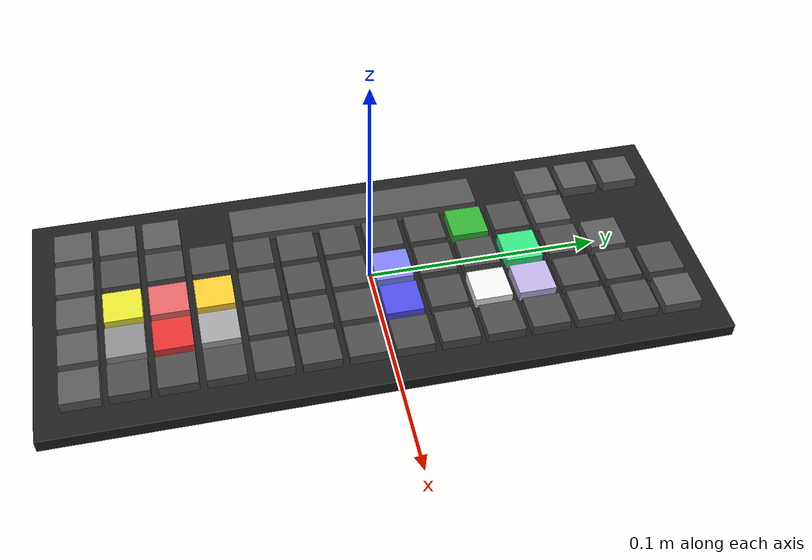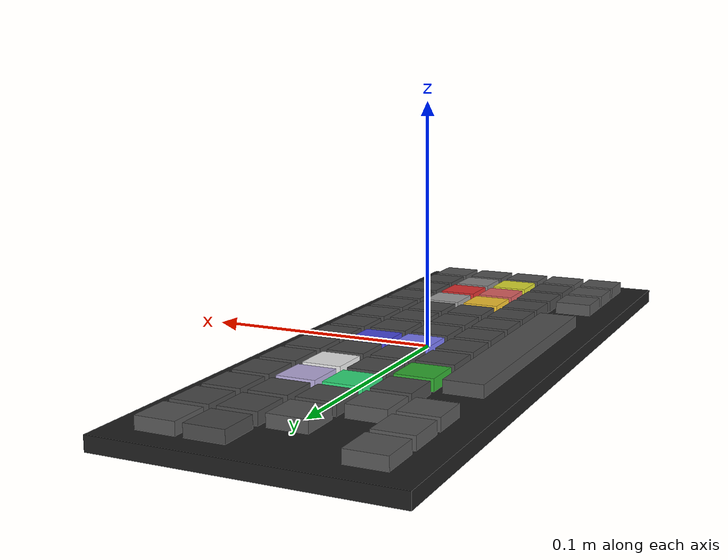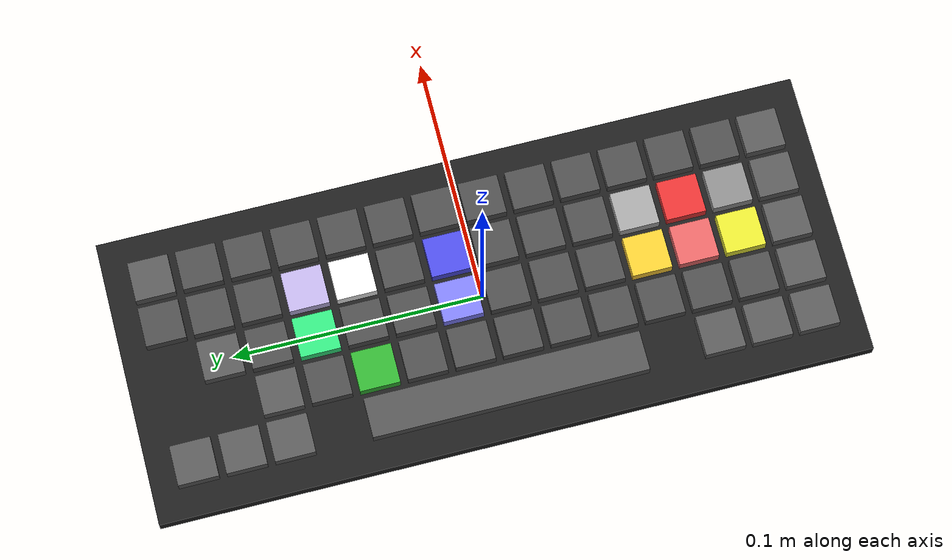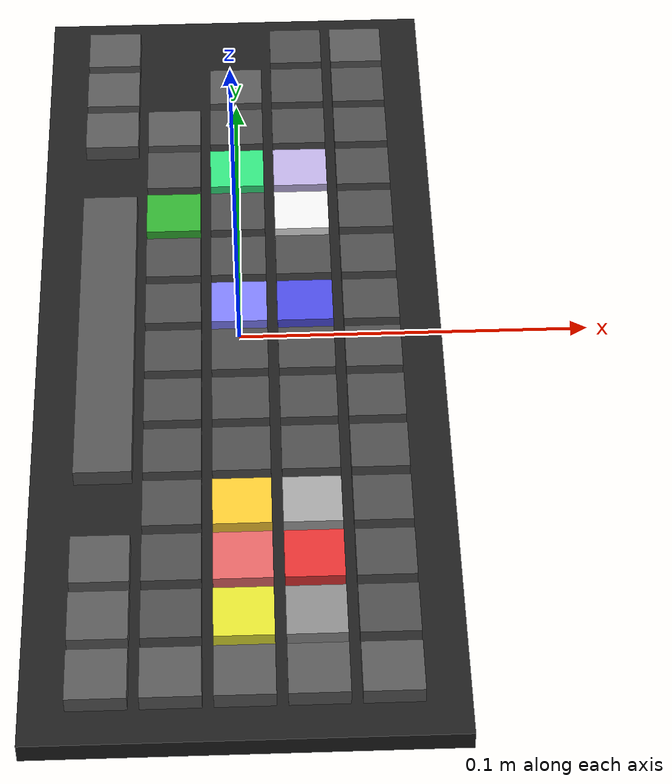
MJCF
<mujoco model="simple_keyboard">
  <worldbody>
    <body>
      <body name="object">

        <!-- ═══ Base plate ════════════════════════════════════════════ -->
        <geom name="base" type="box"
              size="0.058 0.142 0.003"
              pos="0 0 -0.003"
              rgba="0.12 0.12 0.12 1"
              group="0" condim="4"
              solimp="0.998 0.998 0.001" solref="0.001 1"
              friction="0.95 0.3 0.1"/>

        <!-- ═══ Row 0 — Number row (X = +0.038, 14 keys) ════════════ -->
        <geom name="key_esc" type="box" size="0.008 0.008 0.004"
              pos="0.038 -0.1235 0.001" rgba="0.35 0.35 0.35 1"
              group="0" condim="4" solimp="0.998 0.998 0.001" solref="0.001 1" friction="0.95 0.3 0.1"/>
        <geom name="key_1" type="box" size="0.008 0.008 0.004"
              pos="0.038 -0.1045 0.001" rgba="0.30 0.30 0.30 1"
              group="0" condim="4" solimp="0.998 0.998 0.001" solref="0.001 1" friction="0.95 0.3 0.1"/>
        <geom name="key_2" type="box" size="0.008 0.008 0.004"
              pos="0.038 -0.0855 0.001" rgba="0.30 0.30 0.30 1"
              group="0" condim="4" solimp="0.998 0.998 0.001" solref="0.001 1" friction="0.95 0.3 0.1"/>
        <geom name="key_3" type="box" size="0.008 0.008 0.004"
              pos="0.038 -0.0665 0.001" rgba="0.30 0.30 0.30 1"
              group="0" condim="4" solimp="0.998 0.998 0.001" solref="0.001 1" friction="0.95 0.3 0.1"/>
        <geom name="key_4" type="box" size="0.008 0.008 0.004"
              pos="0.038 -0.0475 0.001" rgba="0.30 0.30 0.30 1"
              group="0" condim="4" solimp="0.998 0.998 0.001" solref="0.001 1" friction="0.95 0.3 0.1"/>
        <geom name="key_5" type="box" size="0.008 0.008 0.004"
              pos="0.038 -0.0285 0.001" rgba="0.30 0.30 0.30 1"
              group="0" condim="4" solimp="0.998 0.998 0.001" solref="0.001 1" friction="0.95 0.3 0.1"/>
        <geom name="key_6" type="box" size="0.008 0.008 0.004"
              pos="0.038 -0.0095 0.001" rgba="0.30 0.30 0.30 1"
              group="0" condim="4" solimp="0.998 0.998 0.001" solref="0.001 1" friction="0.95 0.3 0.1"/>
        <geom name="key_7" type="box" size="0.008 0.008 0.004"
              pos="0.038 0.0095 0.001" rgba="0.30 0.30 0.30 1"
              group="0" condim="4" solimp="0.998 0.998 0.001" solref="0.001 1" friction="0.95 0.3 0.1"/>
        <geom name="key_8" type="box" size="0.008 0.008 0.004"
              pos="0.038 0.0285 0.001" rgba="0.30 0.30 0.30 1"
              group="0" condim="4" solimp="0.998 0.998 0.001" solref="0.001 1" friction="0.95 0.3 0.1"/>
        <geom name="key_9" type="box" size="0.008 0.008 0.004"
              pos="0.038 0.0475 0.001" rgba="0.30 0.30 0.30 1"
              group="0" condim="4" solimp="0.998 0.998 0.001" solref="0.001 1" friction="0.95 0.3 0.1"/>
        <geom name="key_0" type="box" size="0.008 0.008 0.004"
              pos="0.038 0.0665 0.001" rgba="0.30 0.30 0.30 1"
              group="0" condim="4" solimp="0.998 0.998 0.001" solref="0.001 1" friction="0.95 0.3 0.1"/>
        <geom name="key_minus" type="box" size="0.008 0.008 0.004"
              pos="0.038 0.0855 0.001" rgba="0.30 0.30 0.30 1"
              group="0" condim="4" solimp="0.998 0.998 0.001" solref="0.001 1" friction="0.95 0.3 0.1"/>
        <geom name="key_equal" type="box" size="0.008 0.008 0.004"
              pos="0.038 0.1045 0.001" rgba="0.30 0.30 0.30 1"
              group="0" condim="4" solimp="0.998 0.998 0.001" solref="0.001 1" friction="0.95 0.3 0.1"/>
        <geom name="key_bksp" type="box" size="0.008 0.008 0.004"
              pos="0.038 0.1235 0.001" rgba="0.35 0.35 0.35 1"
              group="0" condim="4" solimp="0.998 0.998 0.001" solref="0.001 1" friction="0.95 0.3 0.1"/>

        <!-- ═══ Row 1 — QWERTY row (X = +0.019, 14 keys) ═══════════ -->
        <geom name="key_tab" type="box" size="0.008 0.008 0.004"
              pos="0.019 -0.1235 0.001" rgba="0.35 0.35 0.35 1"
              group="0" condim="4" solimp="0.998 0.998 0.001" solref="0.001 1" friction="0.95 0.3 0.1"/>
        <!-- Q = none_0 (gray) -->
        <geom name="key_none_0" type="box" size="0.008 0.008 0.004"
              pos="0.019 -0.1045 0.001" rgba="0.55 0.55 0.55 1"
              group="0" condim="4" solimp="0.998 0.998 0.001" solref="0.001 1" friction="0.95 0.3 0.1"/>
        <!-- W = x_pos (red) -->
        <geom name="key_x_pos" type="box" size="0.008 0.008 0.004"
              pos="0.019 -0.0855 0.001" rgba="0.9 0.2 0.2 1"
              group="0" condim="4" solimp="0.998 0.998 0.001" solref="0.001 1" friction="0.95 0.3 0.1"/>
        <!-- E = none_9 (light gray) -->
        <geom name="key_none_9" type="box" size="0.008 0.008 0.004"
              pos="0.019 -0.0665 0.001" rgba="0.65 0.65 0.65 1"
              group="0" condim="4" solimp="0.998 0.998 0.001" solref="0.001 1" friction="0.95 0.3 0.1"/>
        <geom name="key_r" type="box" size="0.008 0.008 0.004"
              pos="0.019 -0.0475 0.001" rgba="0.30 0.30 0.30 1"
              group="0" condim="4" solimp="0.998 0.998 0.001" solref="0.001 1" friction="0.95 0.3 0.1"/>
        <geom name="key_t" type="box" size="0.008 0.008 0.004"
              pos="0.019 -0.0285 0.001" rgba="0.30 0.30 0.30 1"
              group="0" condim="4" solimp="0.998 0.998 0.001" solref="0.001 1" friction="0.95 0.3 0.1"/>
        <geom name="key_y" type="box" size="0.008 0.008 0.004"
              pos="0.019 -0.0095 0.001" rgba="0.30 0.30 0.30 1"
              group="0" condim="4" solimp="0.998 0.998 0.001" solref="0.001 1" friction="0.95 0.3 0.1"/>
        <!-- U = yaw_pos (blue) -->
        <geom name="key_yaw_pos" type="box" size="0.008 0.008 0.004"
              pos="0.019 0.0095 0.001" rgba="0.3 0.3 0.9 1"
              group="0" condim="4" solimp="0.998 0.998 0.001" solref="0.001 1" friction="0.95 0.3 0.1"/>
        <geom name="key_i" type="box" size="0.008 0.008 0.004"
              pos="0.019 0.0285 0.001" rgba="0.30 0.30 0.30 1"
              group="0" condim="4" solimp="0.998 0.998 0.001" solref="0.001 1" friction="0.95 0.3 0.1"/>
        <!-- O = open_gripper (white) -->
        <geom name="key_open_gripper" type="box" size="0.008 0.008 0.004"
              pos="0.019 0.0475 0.001" rgba="0.95 0.95 0.95 1"
              group="0" condim="4" solimp="0.998 0.998 0.001" solref="0.001 1" friction="0.95 0.3 0.1"/>
        <!-- P = close_gripper (lavender) -->
        <geom name="key_close_gripper" type="box" size="0.008 0.008 0.004"
              pos="0.019 0.0665 0.001" rgba="0.75 0.70 0.90 1"
              group="0" condim="4" solimp="0.998 0.998 0.001" solref="0.001 1" friction="0.95 0.3 0.1"/>
        <geom name="key_lbracket" type="box" size="0.008 0.008 0.004"
              pos="0.019 0.0855 0.001" rgba="0.30 0.30 0.30 1"
              group="0" condim="4" solimp="0.998 0.998 0.001" solref="0.001 1" friction="0.95 0.3 0.1"/>
        <geom name="key_rbracket" type="box" size="0.008 0.008 0.004"
              pos="0.019 0.1045 0.001" rgba="0.30 0.30 0.30 1"
              group="0" condim="4" solimp="0.998 0.998 0.001" solref="0.001 1" friction="0.95 0.3 0.1"/>
        <geom name="key_backslash" type="box" size="0.008 0.008 0.004"
              pos="0.019 0.1235 0.001" rgba="0.30 0.30 0.30 1"
              group="0" condim="4" solimp="0.998 0.998 0.001" solref="0.001 1" friction="0.95 0.3 0.1"/>

        <!-- ═══ Row 2 — Home row (X = 0.000, 13 keys) ══════════════ -->
        <geom name="key_caps" type="box" size="0.008 0.008 0.004"
              pos="0.0 -0.1235 0.001" rgba="0.35 0.35 0.35 1"
              group="0" condim="4" solimp="0.998 0.998 0.001" solref="0.001 1" friction="0.95 0.3 0.1"/>
        <!-- A = y_pos (yellow) -->
        <geom name="key_y_pos" type="box" size="0.008 0.008 0.004"
              pos="0.0 -0.1045 0.001" rgba="0.9 0.9 0.2 1"
              group="0" condim="4" solimp="0.998 0.998 0.001" solref="0.001 1" friction="0.95 0.3 0.1"/>
        <!-- S = x_neg (salmon) -->
        <geom name="key_x_neg" type="box" size="0.008 0.008 0.004"
              pos="0.0 -0.0855 0.001" rgba="0.9 0.4 0.4 1"
              group="0" condim="4" solimp="0.998 0.998 0.001" solref="0.001 1" friction="0.95 0.3 0.1"/>
        <!-- D = y_neg (gold) -->
        <geom name="key_y_neg" type="box" size="0.008 0.008 0.004"
              pos="0.0 -0.0665 0.001" rgba="1.0 0.8 0.2 1"
              group="0" condim="4" solimp="0.998 0.998 0.001" solref="0.001 1" friction="0.95 0.3 0.1"/>
        <geom name="key_f" type="box" size="0.008 0.008 0.004"
              pos="0.0 -0.0475 0.001" rgba="0.30 0.30 0.30 1"
              group="0" condim="4" solimp="0.998 0.998 0.001" solref="0.001 1" friction="0.95 0.3 0.1"/>
        <geom name="key_g" type="box" size="0.008 0.008 0.004"
              pos="0.0 -0.0285 0.001" rgba="0.30 0.30 0.30 1"
              group="0" condim="4" solimp="0.998 0.998 0.001" solref="0.001 1" friction="0.95 0.3 0.1"/>
        <geom name="key_h" type="box" size="0.008 0.008 0.004"
              pos="0.0 -0.0095 0.001" rgba="0.30 0.30 0.30 1"
              group="0" condim="4" solimp="0.998 0.998 0.001" solref="0.001 1" friction="0.95 0.3 0.1"/>
        <!-- J = yaw_neg (light blue) -->
        <geom name="key_yaw_neg" type="box" size="0.008 0.008 0.004"
              pos="0.0 0.0095 0.001" rgba="0.5 0.5 1.0 1"
              group="0" condim="4" solimp="0.998 0.998 0.001" solref="0.001 1" friction="0.95 0.3 0.1"/>
        <geom name="key_k" type="box" size="0.008 0.008 0.004"
              pos="0.0 0.0285 0.001" rgba="0.30 0.30 0.30 1"
              group="0" condim="4" solimp="0.998 0.998 0.001" solref="0.001 1" friction="0.95 0.3 0.1"/>
        <geom name="key_l" type="box" size="0.008 0.008 0.004"
              pos="0.0 0.0475 0.001" rgba="0.30 0.30 0.30 1"
              group="0" condim="4" solimp="0.998 0.998 0.001" solref="0.001 1" friction="0.95 0.3 0.1"/>
        <!-- ; = z_pos (mint green) -->
        <geom name="key_z_pos" type="box" size="0.008 0.008 0.004"
              pos="0.0 0.0665 0.001" rgba="0.2 0.9 0.5 1"
              group="0" condim="4" solimp="0.998 0.998 0.001" solref="0.001 1" friction="0.95 0.3 0.1"/>
        <geom name="key_quote" type="box" size="0.008 0.008 0.004"
              pos="0.0 0.0855 0.001" rgba="0.30 0.30 0.30 1"
              group="0" condim="4" solimp="0.998 0.998 0.001" solref="0.001 1" friction="0.95 0.3 0.1"/>
        <geom name="key_enter" type="box" size="0.008 0.008 0.004"
              pos="0.0 0.1045 0.001" rgba="0.35 0.35 0.35 1"
              group="0" condim="4" solimp="0.998 0.998 0.001" solref="0.001 1" friction="0.95 0.3 0.1"/>

        <!-- ═══ Row 3 — Bottom row (X = −0.019, 12 keys) ═══════════ -->
        <geom name="key_lshift" type="box" size="0.008 0.008 0.004"
              pos="-0.019 -0.1235 0.001" rgba="0.35 0.35 0.35 1"
              group="0" condim="4" solimp="0.998 0.998 0.001" solref="0.001 1" friction="0.95 0.3 0.1"/>
        <geom name="key_z" type="box" size="0.008 0.008 0.004"
              pos="-0.019 -0.1045 0.001" rgba="0.30 0.30 0.30 1"
              group="0" condim="4" solimp="0.998 0.998 0.001" solref="0.001 1" friction="0.95 0.3 0.1"/>
        <geom name="key_x" type="box" size="0.008 0.008 0.004"
              pos="-0.019 -0.0855 0.001" rgba="0.30 0.30 0.30 1"
              group="0" condim="4" solimp="0.998 0.998 0.001" solref="0.001 1" friction="0.95 0.3 0.1"/>
        <geom name="key_c" type="box" size="0.008 0.008 0.004"
              pos="-0.019 -0.0665 0.001" rgba="0.30 0.30 0.30 1"
              group="0" condim="4" solimp="0.998 0.998 0.001" solref="0.001 1" friction="0.95 0.3 0.1"/>
        <geom name="key_v" type="box" size="0.008 0.008 0.004"
              pos="-0.019 -0.0475 0.001" rgba="0.30 0.30 0.30 1"
              group="0" condim="4" solimp="0.998 0.998 0.001" solref="0.001 1" friction="0.95 0.3 0.1"/>
        <geom name="key_b" type="box" size="0.008 0.008 0.004"
              pos="-0.019 -0.0285 0.001" rgba="0.30 0.30 0.30 1"
              group="0" condim="4" solimp="0.998 0.998 0.001" solref="0.001 1" friction="0.95 0.3 0.1"/>
        <geom name="key_n" type="box" size="0.008 0.008 0.004"
              pos="-0.019 -0.0095 0.001" rgba="0.30 0.30 0.30 1"
              group="0" condim="4" solimp="0.998 0.998 0.001" solref="0.001 1" friction="0.95 0.3 0.1"/>
        <geom name="key_m" type="box" size="0.008 0.008 0.004"
              pos="-0.019 0.0095 0.001" rgba="0.30 0.30 0.30 1"
              group="0" condim="4" solimp="0.998 0.998 0.001" solref="0.001 1" friction="0.95 0.3 0.1"/>
        <geom name="key_comma" type="box" size="0.008 0.008 0.004"
              pos="-0.019 0.0285 0.001" rgba="0.30 0.30 0.30 1"
              group="0" condim="4" solimp="0.998 0.998 0.001" solref="0.001 1" friction="0.95 0.3 0.1"/>
        <!-- . = z_neg (green) -->
        <geom name="key_z_neg" type="box" size="0.008 0.008 0.004"
              pos="-0.019 0.0475 0.001" rgba="0.2 0.7 0.2 1"
              group="0" condim="4" solimp="0.998 0.998 0.001" solref="0.001 1" friction="0.95 0.3 0.1"/>
        <geom name="key_slash" type="box" size="0.008 0.008 0.004"
              pos="-0.019 0.0665 0.001" rgba="0.30 0.30 0.30 1"
              group="0" condim="4" solimp="0.998 0.998 0.001" solref="0.001 1" friction="0.95 0.3 0.1"/>
        <geom name="key_rshift" type="box" size="0.008 0.008 0.004"
              pos="-0.019 0.0855 0.001" rgba="0.35 0.35 0.35 1"
              group="0" condim="4" solimp="0.998 0.998 0.001" solref="0.001 1" friction="0.95 0.3 0.1"/>

        <!-- ═══ Row 4 — Space row (X = −0.038, 7 keys) ═════════════ -->
        <geom name="key_lctrl" type="box" size="0.008 0.008 0.004"
              pos="-0.038 -0.1235 0.001" rgba="0.35 0.35 0.35 1"
              group="0" condim="4" solimp="0.998 0.998 0.001" solref="0.001 1" friction="0.95 0.3 0.1"/>
        <geom name="key_win" type="box" size="0.008 0.008 0.004"
              pos="-0.038 -0.1045 0.001" rgba="0.35 0.35 0.35 1"
              group="0" condim="4" solimp="0.998 0.998 0.001" solref="0.001 1" friction="0.95 0.3 0.1"/>
        <geom name="key_lalt" type="box" size="0.008 0.008 0.004"
              pos="-0.038 -0.0855 0.001" rgba="0.35 0.35 0.35 1"
              group="0" condim="4" solimp="0.998 0.998 0.001" solref="0.001 1" friction="0.95 0.3 0.1"/>
        <!-- Space bar: 6u wide, centered at Y=0 -->
        <geom name="key_space" type="box" size="0.008 0.055 0.004"
              pos="-0.038 0.0 0.001" rgba="0.33 0.33 0.33 1"
              group="0" condim="4" solimp="0.998 0.998 0.001" solref="0.001 1" friction="0.95 0.3 0.1"/>
        <geom name="key_ralt" type="box" size="0.008 0.008 0.004"
              pos="-0.038 0.0855 0.001" rgba="0.35 0.35 0.35 1"
              group="0" condim="4" solimp="0.998 0.998 0.001" solref="0.001 1" friction="0.95 0.3 0.1"/>
        <geom name="key_menu" type="box" size="0.008 0.008 0.004"
              pos="-0.038 0.1045 0.001" rgba="0.35 0.35 0.35 1"
              group="0" condim="4" solimp="0.998 0.998 0.001" solref="0.001 1" friction="0.95 0.3 0.1"/>
        <geom name="key_rctrl" type="box" size="0.008 0.008 0.004"
              pos="-0.038 0.1235 0.001" rgba="0.35 0.35 0.35 1"
              group="0" condim="4" solimp="0.998 0.998 0.001" solref="0.001 1" friction="0.95 0.3 0.1"/>

        <!-- ═══ Contact sites on top of each control key ═══════════ -->
        <site name="key_none_0_site"         pos="0.019 -0.1045 0.005" size="0.001" rgba="0 0 0 0"/>
        <site name="key_x_pos_site"          pos="0.019 -0.0855 0.005" size="0.001" rgba="0 0 0 0"/>
        <site name="key_none_9_site"         pos="0.019 -0.0665 0.005" size="0.001" rgba="0 0 0 0"/>
        <site name="key_yaw_pos_site"        pos="0.019  0.0095 0.005" size="0.001" rgba="0 0 0 0"/>
        <site name="key_open_gripper_site"   pos="0.019  0.0475 0.005" size="0.001" rgba="0 0 0 0"/>
        <site name="key_close_gripper_site"  pos="0.019  0.0665 0.005" size="0.001" rgba="0 0 0 0"/>
        <site name="key_y_pos_site"          pos="0.0   -0.1045 0.005" size="0.001" rgba="0 0 0 0"/>
        <site name="key_x_neg_site"          pos="0.0   -0.0855 0.005" size="0.001" rgba="0 0 0 0"/>
        <site name="key_y_neg_site"          pos="0.0   -0.0665 0.005" size="0.001" rgba="0 0 0 0"/>
        <site name="key_yaw_neg_site"        pos="0.0    0.0095 0.005" size="0.001" rgba="0 0 0 0"/>
        <site name="key_z_pos_site"          pos="0.0    0.0665 0.005" size="0.001" rgba="0 0 0 0"/>
        <site name="key_z_neg_site"          pos="-0.019 0.0475 0.005" size="0.001" rgba="0 0 0 0"/>
      </body>

      <!-- Required sites for MujocoXMLObject -->
      <site name="bottom_site" pos="0 0 -0.006" size="0.001" rgba="0 0 0 0"/>
      <site name="top_site" pos="0 0 0.005" size="0.001" rgba="0 0 0 0"/>
      <site name="horizontal_radius_site" pos="0.058 0.142 0" size="0.001" rgba="0 0 0 0"/>
    </body>
  </worldbody>
</mujoco>
